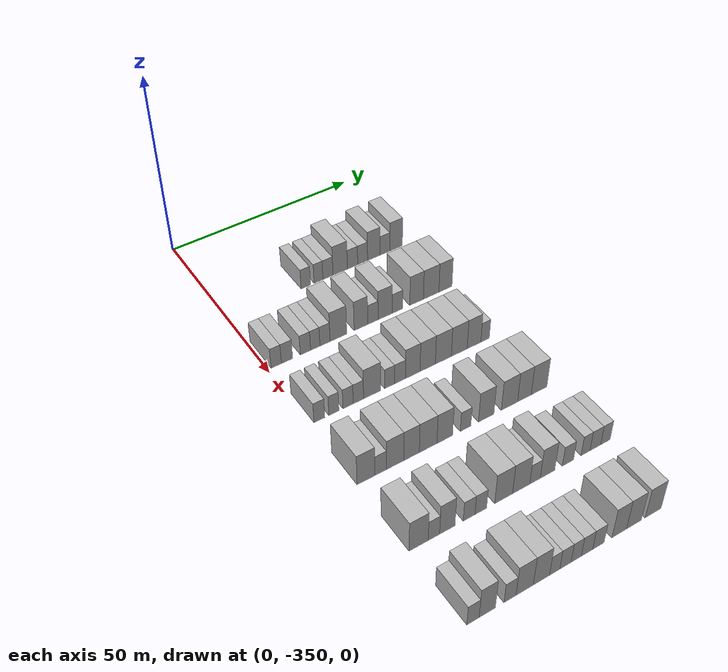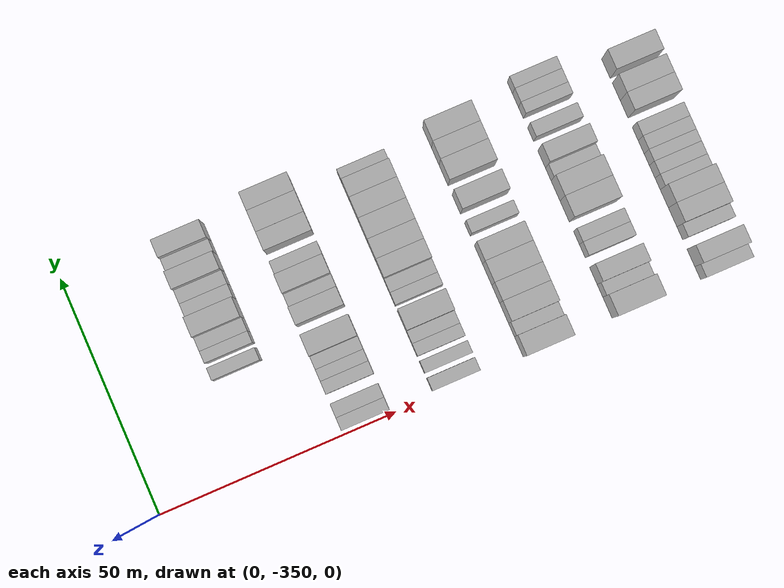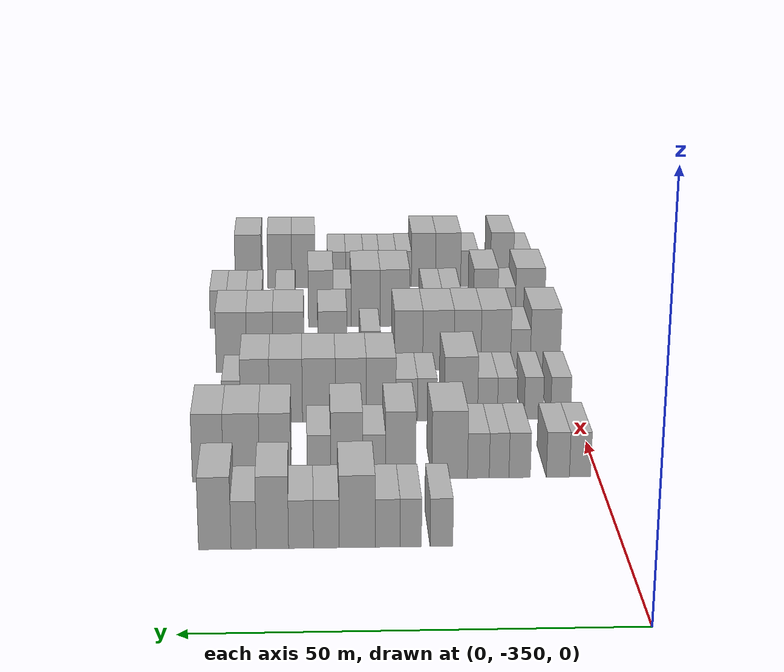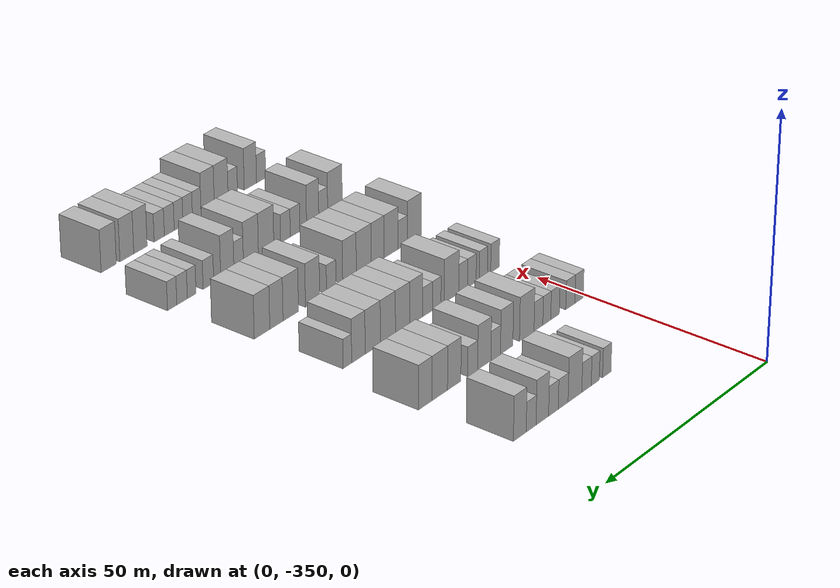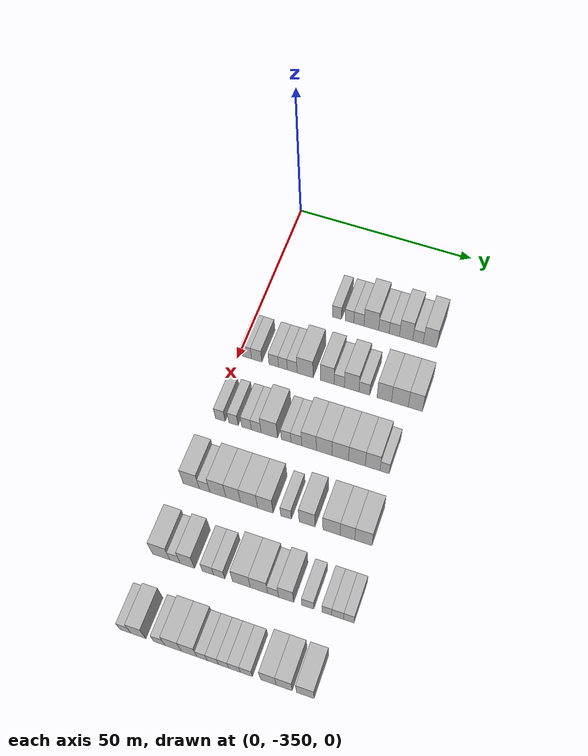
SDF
<sdf version="1.6">
 <world name="default">
  <model name="building_1">
   <static>1</static>
   <pose>25.0000 -329.0862 0 0.000000 0.000000 0.000000</pose>
   <link name="link">
    <pose>0 0 3.00 0 0 0</pose>
    <collision name="collision"><geometry><box><size>10.0000 2.6092 6.0000</size></box></geometry></collision>
    <visual name="visual">
     <cast_shadows>0</cast_shadows>
     <geometry><box><size>10.0000 2.6092 6.0000</size></box></geometry>
     <material>
      <script>
       <uri>model://HANNAS_wall/materials/scripts</uri>
       <uri>model://HANNAS_wall/materials/textures</uri>
       <name>vrc/HANNAS_wall</name>
      </script>
     </material>
    </visual>
   </link>
  </model>
  <model name="building_2">
   <static>1</static>
   <pose>25.0000 -325.5485 0 0.000000 0.000000 0.000000</pose>
   <link name="link">
    <pose>0 0 3.00 0 0 0</pose>
    <collision name="collision"><geometry><box><size>10.0000 2.4664 6.0000</size></box></geometry></collision>
    <visual name="visual">
     <cast_shadows>0</cast_shadows>
     <geometry><box><size>10.0000 2.4664 6.0000</size></box></geometry>
     <material>
      <script>
       <uri>model://HANNAS_wall/materials/scripts</uri>
       <uri>model://HANNAS_wall/materials/textures</uri>
       <name>vrc/HANNAS_wall</name>
      </script>
     </material>
    </visual>
   </link>
  </model>
  <model name="building_3">
   <static>1</static>
   <pose>25.0000 -322.8897 0 0.000000 0.000000 0.000000</pose>
   <link name="link">
    <pose>0 0 3.00 0 0 0</pose>
    <collision name="collision"><geometry><box><size>10.0000 2.8511 6.0000</size></box></geometry></collision>
    <visual name="visual">
     <cast_shadows>0</cast_shadows>
     <geometry><box><size>10.0000 2.8511 6.0000</size></box></geometry>
     <material>
      <script>
       <uri>model://HANNAS_wall/materials/scripts</uri>
       <uri>model://HANNAS_wall/materials/textures</uri>
       <name>vrc/HANNAS_wall</name>
      </script>
     </material>
    </visual>
   </link>
  </model>
  <model name="building_4">
   <static>1</static>
   <pose>25.0000 -319.3970 0 0.000000 0.000000 0.000000</pose>
   <link name="link">
    <pose>0 0 4.50 0 0 0</pose>
    <collision name="collision"><geometry><box><size>10.0000 4.1343 9.0000</size></box></geometry></collision>
    <visual name="visual">
     <cast_shadows>0</cast_shadows>
     <geometry><box><size>10.0000 4.1343 9.0000</size></box></geometry>
     <material>
      <script>
       <uri>model://HANNAS_wall/materials/scripts</uri>
       <uri>model://HANNAS_wall/materials/textures</uri>
       <name>vrc/HANNAS_wall</name>
      </script>
     </material>
    </visual>
   </link>
  </model>
  <model name="building_5">
   <static>1</static>
   <pose>25.0000 -315.8609 0 0.000000 0.000000 0.000000</pose>
   <link name="link">
    <pose>0 0 3.00 0 0 0</pose>
    <collision name="collision"><geometry><box><size>10.0000 2.9378 6.0000</size></box></geometry></collision>
    <visual name="visual">
     <cast_shadows>0</cast_shadows>
     <geometry><box><size>10.0000 2.9378 6.0000</size></box></geometry>
     <material>
      <script>
       <uri>model://HANNAS_wall/materials/scripts</uri>
       <uri>model://HANNAS_wall/materials/textures</uri>
       <name>vrc/HANNAS_wall</name>
      </script>
     </material>
    </visual>
   </link>
  </model>
  <model name="building_6">
   <static>1</static>
   <pose>25.0000 -312.9622 0 0.000000 0.000000 0.000000</pose>
   <link name="link">
    <pose>0 0 3.00 0 0 0</pose>
    <collision name="collision"><geometry><box><size>10.0000 2.8597 6.0000</size></box></geometry></collision>
    <visual name="visual">
     <cast_shadows>0</cast_shadows>
     <geometry><box><size>10.0000 2.8597 6.0000</size></box></geometry>
     <material>
      <script>
       <uri>model://HANNAS_wall/materials/scripts</uri>
       <uri>model://HANNAS_wall/materials/textures</uri>
       <name>vrc/HANNAS_wall</name>
      </script>
     </material>
    </visual>
   </link>
  </model>
  <model name="building_7">
   <static>1</static>
   <pose>25.0000 -309.6842 0 0.000000 0.000000 0.000000</pose>
   <link name="link">
    <pose>0 0 4.50 0 0 0</pose>
    <collision name="collision"><geometry><box><size>10.0000 3.6963 9.0000</size></box></geometry></collision>
    <visual name="visual">
     <cast_shadows>0</cast_shadows>
     <geometry><box><size>10.0000 3.6963 9.0000</size></box></geometry>
     <material>
      <script>
       <uri>model://HANNAS_wall/materials/scripts</uri>
       <uri>model://HANNAS_wall/materials/textures</uri>
       <name>vrc/HANNAS_wall</name>
      </script>
     </material>
    </visual>
   </link>
  </model>
  <model name="building_8">
   <static>1</static>
   <pose>25.0000 -306.3947 0 0.000000 0.000000 0.000000</pose>
   <link name="link">
    <pose>0 0 3.00 0 0 0</pose>
    <collision name="collision"><geometry><box><size>10.0000 2.8829 6.0000</size></box></geometry></collision>
    <visual name="visual">
     <cast_shadows>0</cast_shadows>
     <geometry><box><size>10.0000 2.8829 6.0000</size></box></geometry>
     <material>
      <script>
       <uri>model://HANNAS_wall/materials/scripts</uri>
       <uri>model://HANNAS_wall/materials/textures</uri>
       <name>vrc/HANNAS_wall</name>
      </script>
     </material>
    </visual>
   </link>
  </model>
  <model name="building_9">
   <static>1</static>
   <pose>25.0000 -303.0971 0 0.000000 0.000000 0.000000</pose>
   <link name="link">
    <pose>0 0 4.50 0 0 0</pose>
    <collision name="collision"><geometry><box><size>10.0000 3.7122 9.0000</size></box></geometry></collision>
    <visual name="visual">
     <cast_shadows>0</cast_shadows>
     <geometry><box><size>10.0000 3.7122 9.0000</size></box></geometry>
     <material>
      <script>
       <uri>model://HANNAS_wall/materials/scripts</uri>
       <uri>model://HANNAS_wall/materials/textures</uri>
       <name>vrc/HANNAS_wall</name>
      </script>
     </material>
    </visual>
   </link>
  </model>
  <model name="building_166">
   <static>1</static>
   <pose>44.0000 -347.6757 0 0.000000 0.000000 0.000000</pose>
   <link name="link">
    <pose>0 0 3.00 0 0 0</pose>
    <collision name="collision"><geometry><box><size>10.0000 2.6485 6.0000</size></box></geometry></collision>
    <visual name="visual">
     <cast_shadows>0</cast_shadows>
     <geometry><box><size>10.0000 2.6485 6.0000</size></box></geometry>
     <material>
      <script>
       <uri>model://HANNAS_wall/materials/scripts</uri>
       <uri>model://HANNAS_wall/materials/textures</uri>
       <name>vrc/HANNAS_wall</name>
      </script>
     </material>
    </visual>
   </link>
  </model>
  <model name="building_167">
   <static>1</static>
   <pose>44.0000 -344.9093 0 0.000000 0.000000 0.000000</pose>
   <link name="link">
    <pose>0 0 3.00 0 0 0</pose>
    <collision name="collision"><geometry><box><size>10.0000 2.8843 6.0000</size></box></geometry></collision>
    <visual name="visual">
     <cast_shadows>0</cast_shadows>
     <geometry><box><size>10.0000 2.8843 6.0000</size></box></geometry>
     <material>
      <script>
       <uri>model://HANNAS_wall/materials/scripts</uri>
       <uri>model://HANNAS_wall/materials/textures</uri>
       <name>vrc/HANNAS_wall</name>
      </script>
     </material>
    </visual>
   </link>
  </model>
  <model name="building_168">
   <static>1</static>
   <pose>44.0000 -340.1303 0 0.000000 0.000000 0.000000</pose>
   <link name="link">
    <pose>0 0 3.00 0 0 0</pose>
    <collision name="collision"><geometry><box><size>10.0000 2.6739 6.0000</size></box></geometry></collision>
    <visual name="visual">
     <cast_shadows>0</cast_shadows>
     <geometry><box><size>10.0000 2.6739 6.0000</size></box></geometry>
     <material>
      <script>
       <uri>model://HANNAS_wall/materials/scripts</uri>
       <uri>model://HANNAS_wall/materials/textures</uri>
       <name>vrc/HANNAS_wall</name>
      </script>
     </material>
    </visual>
   </link>
  </model>
  <model name="building_169">
   <static>1</static>
   <pose>44.0000 -337.5640 0 0.000000 0.000000 0.000000</pose>
   <link name="link">
    <pose>0 0 3.00 0 0 0</pose>
    <collision name="collision"><geometry><box><size>10.0000 2.4586 6.0000</size></box></geometry></collision>
    <visual name="visual">
     <cast_shadows>0</cast_shadows>
     <geometry><box><size>10.0000 2.4586 6.0000</size></box></geometry>
     <material>
      <script>
       <uri>model://HANNAS_wall/materials/scripts</uri>
       <uri>model://HANNAS_wall/materials/textures</uri>
       <name>vrc/HANNAS_wall</name>
      </script>
     </material>
    </visual>
   </link>
  </model>
  <model name="building_170">
   <static>1</static>
   <pose>44.0000 -334.9803 0 0.000000 0.000000 0.000000</pose>
   <link name="link">
    <pose>0 0 3.00 0 0 0</pose>
    <collision name="collision"><geometry><box><size>10.0000 2.7088 6.0000</size></box></geometry></collision>
    <visual name="visual">
     <cast_shadows>0</cast_shadows>
     <geometry><box><size>10.0000 2.7088 6.0000</size></box></geometry>
     <material>
      <script>
       <uri>model://HANNAS_wall/materials/scripts</uri>
       <uri>model://HANNAS_wall/materials/textures</uri>
       <name>vrc/HANNAS_wall</name>
      </script>
     </material>
    </visual>
   </link>
  </model>
  <model name="building_171">
   <static>1</static>
   <pose>44.0000 -331.4008 0 0.000000 0.000000 0.000000</pose>
   <link name="link">
    <pose>0 0 4.50 0 0 0</pose>
    <collision name="collision"><geometry><box><size>10.0000 4.4502 9.0000</size></box></geometry></collision>
    <visual name="visual">
     <cast_shadows>0</cast_shadows>
     <geometry><box><size>10.0000 4.4502 9.0000</size></box></geometry>
     <material>
      <script>
       <uri>model://HANNAS_wall/materials/scripts</uri>
       <uri>model://HANNAS_wall/materials/textures</uri>
       <name>vrc/HANNAS_wall</name>
      </script>
     </material>
    </visual>
   </link>
  </model>
  <model name="building_172">
   <static>1</static>
   <pose>44.0000 -325.3051 0 0.000000 0.000000 0.000000</pose>
   <link name="link">
    <pose>0 0 4.50 0 0 0</pose>
    <collision name="collision"><geometry><box><size>10.0000 3.7412 9.0000</size></box></geometry></collision>
    <visual name="visual">
     <cast_shadows>0</cast_shadows>
     <geometry><box><size>10.0000 3.7412 9.0000</size></box></geometry>
     <material>
      <script>
       <uri>model://HANNAS_wall/materials/scripts</uri>
       <uri>model://HANNAS_wall/materials/textures</uri>
       <name>vrc/HANNAS_wall</name>
      </script>
     </material>
    </visual>
   </link>
  </model>
  <model name="building_173">
   <static>1</static>
   <pose>44.0000 -322.0191 0 0.000000 0.000000 0.000000</pose>
   <link name="link">
    <pose>0 0 3.00 0 0 0</pose>
    <collision name="collision"><geometry><box><size>10.0000 2.8308 6.0000</size></box></geometry></collision>
    <visual name="visual">
     <cast_shadows>0</cast_shadows>
     <geometry><box><size>10.0000 2.8308 6.0000</size></box></geometry>
     <material>
      <script>
       <uri>model://HANNAS_wall/materials/scripts</uri>
       <uri>model://HANNAS_wall/materials/textures</uri>
       <name>vrc/HANNAS_wall</name>
      </script>
     </material>
    </visual>
   </link>
  </model>
  <model name="building_174">
   <static>1</static>
   <pose>44.0000 -318.6197 0 0.000000 0.000000 0.000000</pose>
   <link name="link">
    <pose>0 0 4.50 0 0 0</pose>
    <collision name="collision"><geometry><box><size>10.0000 3.9680 9.0000</size></box></geometry></collision>
    <visual name="visual">
     <cast_shadows>0</cast_shadows>
     <geometry><box><size>10.0000 3.9680 9.0000</size></box></geometry>
     <material>
      <script>
       <uri>model://HANNAS_wall/materials/scripts</uri>
       <uri>model://HANNAS_wall/materials/textures</uri>
       <name>vrc/HANNAS_wall</name>
      </script>
     </material>
    </visual>
   </link>
  </model>
  <model name="building_175">
   <static>1</static>
   <pose>44.0000 -315.1719 0 0.000000 0.000000 0.000000</pose>
   <link name="link">
    <pose>0 0 3.00 0 0 0</pose>
    <collision name="collision"><geometry><box><size>10.0000 2.9277 6.0000</size></box></geometry></collision>
    <visual name="visual">
     <cast_shadows>0</cast_shadows>
     <geometry><box><size>10.0000 2.9277 6.0000</size></box></geometry>
     <material>
      <script>
       <uri>model://HANNAS_wall/materials/scripts</uri>
       <uri>model://HANNAS_wall/materials/textures</uri>
       <name>vrc/HANNAS_wall</name>
      </script>
     </material>
    </visual>
   </link>
  </model>
  <model name="building_176">
   <static>1</static>
   <pose>44.0000 -309.7611 0 0.000000 0.000000 0.000000</pose>
   <link name="link">
    <pose>0 0 4.50 0 0 0</pose>
    <collision name="collision"><geometry><box><size>10.0000 3.8939 9.0000</size></box></geometry></collision>
    <visual name="visual">
     <cast_shadows>0</cast_shadows>
     <geometry><box><size>10.0000 3.8939 9.0000</size></box></geometry>
     <material>
      <script>
       <uri>model://HANNAS_wall/materials/scripts</uri>
       <uri>model://HANNAS_wall/materials/textures</uri>
       <name>vrc/HANNAS_wall</name>
      </script>
     </material>
    </visual>
   </link>
  </model>
  <model name="building_177">
   <static>1</static>
   <pose>44.0000 -305.5745 0 0.000000 0.000000 0.000000</pose>
   <link name="link">
    <pose>0 0 4.50 0 0 0</pose>
    <collision name="collision"><geometry><box><size>10.0000 4.4791 9.0000</size></box></geometry></collision>
    <visual name="visual">
     <cast_shadows>0</cast_shadows>
     <geometry><box><size>10.0000 4.4791 9.0000</size></box></geometry>
     <material>
      <script>
       <uri>model://HANNAS_wall/materials/scripts</uri>
       <uri>model://HANNAS_wall/materials/textures</uri>
       <name>vrc/HANNAS_wall</name>
      </script>
     </material>
    </visual>
   </link>
  </model>
  <model name="building_178">
   <static>1</static>
   <pose>44.0000 -301.4208 0 0.000000 0.000000 0.000000</pose>
   <link name="link">
    <pose>0 0 4.50 0 0 0</pose>
    <collision name="collision"><geometry><box><size>10.0000 3.8284 9.0000</size></box></geometry></collision>
    <visual name="visual">
     <cast_shadows>0</cast_shadows>
     <geometry><box><size>10.0000 3.8284 9.0000</size></box></geometry>
     <material>
      <script>
       <uri>model://HANNAS_wall/materials/scripts</uri>
       <uri>model://HANNAS_wall/materials/textures</uri>
       <name>vrc/HANNAS_wall</name>
      </script>
     </material>
    </visual>
   </link>
  </model>
  <model name="building_332">
   <static>1</static>
   <pose>63.0000 -347.6558 0 0.000000 0.000000 0.000000</pose>
   <link name="link">
    <pose>0 0 3.00 0 0 0</pose>
    <collision name="collision"><geometry><box><size>10.0000 2.6885 6.0000</size></box></geometry></collision>
    <visual name="visual">
     <cast_shadows>0</cast_shadows>
     <geometry><box><size>10.0000 2.6885 6.0000</size></box></geometry>
     <material>
      <script>
       <uri>model://HANNAS_wall/materials/scripts</uri>
       <uri>model://HANNAS_wall/materials/textures</uri>
       <name>vrc/HANNAS_wall</name>
      </script>
     </material>
    </visual>
   </link>
  </model>
  <model name="building_333">
   <static>1</static>
   <pose>63.0000 -344.0409 0 0.000000 0.000000 0.000000</pose>
   <link name="link">
    <pose>0 0 3.00 0 0 0</pose>
    <collision name="collision"><geometry><box><size>10.0000 2.5413 6.0000</size></box></geometry></collision>
    <visual name="visual">
     <cast_shadows>0</cast_shadows>
     <geometry><box><size>10.0000 2.5413 6.0000</size></box></geometry>
     <material>
      <script>
       <uri>model://HANNAS_wall/materials/scripts</uri>
       <uri>model://HANNAS_wall/materials/textures</uri>
       <name>vrc/HANNAS_wall</name>
      </script>
     </material>
    </visual>
   </link>
  </model>
  <model name="building_334">
   <static>1</static>
   <pose>63.0000 -340.4680 0 0.000000 0.000000 0.000000</pose>
   <link name="link">
    <pose>0 0 3.00 0 0 0</pose>
    <collision name="collision"><geometry><box><size>10.0000 2.6044 6.0000</size></box></geometry></collision>
    <visual name="visual">
     <cast_shadows>0</cast_shadows>
     <geometry><box><size>10.0000 2.6044 6.0000</size></box></geometry>
     <material>
      <script>
       <uri>model://HANNAS_wall/materials/scripts</uri>
       <uri>model://HANNAS_wall/materials/textures</uri>
       <name>vrc/HANNAS_wall</name>
      </script>
     </material>
    </visual>
   </link>
  </model>
  <model name="building_335">
   <static>1</static>
   <pose>63.0000 -337.8386 0 0.000000 0.000000 0.000000</pose>
   <link name="link">
    <pose>0 0 3.00 0 0 0</pose>
    <collision name="collision"><geometry><box><size>10.0000 2.6544 6.0000</size></box></geometry></collision>
    <visual name="visual">
     <cast_shadows>0</cast_shadows>
     <geometry><box><size>10.0000 2.6544 6.0000</size></box></geometry>
     <material>
      <script>
       <uri>model://HANNAS_wall/materials/scripts</uri>
       <uri>model://HANNAS_wall/materials/textures</uri>
       <name>vrc/HANNAS_wall</name>
      </script>
     </material>
    </visual>
   </link>
  </model>
  <model name="building_336">
   <static>1</static>
   <pose>63.0000 -334.2886 0 0.000000 0.000000 0.000000</pose>
   <link name="link">
    <pose>0 0 4.50 0 0 0</pose>
    <collision name="collision"><geometry><box><size>10.0000 4.4456 9.0000</size></box></geometry></collision>
    <visual name="visual">
     <cast_shadows>0</cast_shadows>
     <geometry><box><size>10.0000 4.4456 9.0000</size></box></geometry>
     <material>
      <script>
       <uri>model://HANNAS_wall/materials/scripts</uri>
       <uri>model://HANNAS_wall/materials/textures</uri>
       <name>vrc/HANNAS_wall</name>
      </script>
     </material>
    </visual>
   </link>
  </model>
  <model name="building_337">
   <static>1</static>
   <pose>63.0000 -329.7634 0 0.000000 0.000000 0.000000</pose>
   <link name="link">
    <pose>0 0 3.00 0 0 0</pose>
    <collision name="collision"><geometry><box><size>10.0000 2.6049 6.0000</size></box></geometry></collision>
    <visual name="visual">
     <cast_shadows>0</cast_shadows>
     <geometry><box><size>10.0000 2.6049 6.0000</size></box></geometry>
     <material>
      <script>
       <uri>model://HANNAS_wall/materials/scripts</uri>
       <uri>model://HANNAS_wall/materials/textures</uri>
       <name>vrc/HANNAS_wall</name>
      </script>
     </material>
    </visual>
   </link>
  </model>
  <model name="building_338">
   <static>1</static>
   <pose>63.0000 -327.0272 0 0.000000 0.000000 0.000000</pose>
   <link name="link">
    <pose>0 0 3.00 0 0 0</pose>
    <collision name="collision"><geometry><box><size>10.0000 2.8676 6.0000</size></box></geometry></collision>
    <visual name="visual">
     <cast_shadows>0</cast_shadows>
     <geometry><box><size>10.0000 2.8676 6.0000</size></box></geometry>
     <material>
      <script>
       <uri>model://HANNAS_wall/materials/scripts</uri>
       <uri>model://HANNAS_wall/materials/textures</uri>
       <name>vrc/HANNAS_wall</name>
      </script>
     </material>
    </visual>
   </link>
  </model>
  <model name="building_339">
   <static>1</static>
   <pose>63.0000 -323.6263 0 0.000000 0.000000 0.000000</pose>
   <link name="link">
    <pose>0 0 4.50 0 0 0</pose>
    <collision name="collision"><geometry><box><size>10.0000 3.9342 9.0000</size></box></geometry></collision>
    <visual name="visual">
     <cast_shadows>0</cast_shadows>
     <geometry><box><size>10.0000 3.9342 9.0000</size></box></geometry>
     <material>
      <script>
       <uri>model://HANNAS_wall/materials/scripts</uri>
       <uri>model://HANNAS_wall/materials/textures</uri>
       <name>vrc/HANNAS_wall</name>
      </script>
     </material>
    </visual>
   </link>
  </model>
  <model name="building_340">
   <static>1</static>
   <pose>63.0000 -319.5920 0 0.000000 0.000000 0.000000</pose>
   <link name="link">
    <pose>0 0 4.50 0 0 0</pose>
    <collision name="collision"><geometry><box><size>10.0000 4.1343 9.0000</size></box></geometry></collision>
    <visual name="visual">
     <cast_shadows>0</cast_shadows>
     <geometry><box><size>10.0000 4.1343 9.0000</size></box></geometry>
     <material>
      <script>
       <uri>model://HANNAS_wall/materials/scripts</uri>
       <uri>model://HANNAS_wall/materials/textures</uri>
       <name>vrc/HANNAS_wall</name>
      </script>
     </material>
    </visual>
   </link>
  </model>
  <model name="building_341">
   <static>1</static>
   <pose>63.0000 -315.3236 0 0.000000 0.000000 0.000000</pose>
   <link name="link">
    <pose>0 0 4.50 0 0 0</pose>
    <collision name="collision"><geometry><box><size>10.0000 4.4025 9.0000</size></box></geometry></collision>
    <visual name="visual">
     <cast_shadows>0</cast_shadows>
     <geometry><box><size>10.0000 4.4025 9.0000</size></box></geometry>
     <material>
      <script>
       <uri>model://HANNAS_wall/materials/scripts</uri>
       <uri>model://HANNAS_wall/materials/textures</uri>
       <name>vrc/HANNAS_wall</name>
      </script>
     </material>
    </visual>
   </link>
  </model>
  <model name="building_342">
   <static>1</static>
   <pose>63.0000 -310.9300 0 0.000000 0.000000 0.000000</pose>
   <link name="link">
    <pose>0 0 4.50 0 0 0</pose>
    <collision name="collision"><geometry><box><size>10.0000 4.3848 9.0000</size></box></geometry></collision>
    <visual name="visual">
     <cast_shadows>0</cast_shadows>
     <geometry><box><size>10.0000 4.3848 9.0000</size></box></geometry>
     <material>
      <script>
       <uri>model://HANNAS_wall/materials/scripts</uri>
       <uri>model://HANNAS_wall/materials/textures</uri>
       <name>vrc/HANNAS_wall</name>
      </script>
     </material>
    </visual>
   </link>
  </model>
  <model name="building_343">
   <static>1</static>
   <pose>63.0000 -306.8100 0 0.000000 0.000000 0.000000</pose>
   <link name="link">
    <pose>0 0 4.50 0 0 0</pose>
    <collision name="collision"><geometry><box><size>10.0000 3.8552 9.0000</size></box></geometry></collision>
    <visual name="visual">
     <cast_shadows>0</cast_shadows>
     <geometry><box><size>10.0000 3.8552 9.0000</size></box></geometry>
     <material>
      <script>
       <uri>model://HANNAS_wall/materials/scripts</uri>
       <uri>model://HANNAS_wall/materials/textures</uri>
       <name>vrc/HANNAS_wall</name>
      </script>
     </material>
    </visual>
   </link>
  </model>
  <model name="building_344">
   <static>1</static>
   <pose>63.0000 -303.6709 0 0.000000 0.000000 0.000000</pose>
   <link name="link">
    <pose>0 0 3.00 0 0 0</pose>
    <collision name="collision"><geometry><box><size>10.0000 2.4230 6.0000</size></box></geometry></collision>
    <visual name="visual">
     <cast_shadows>0</cast_shadows>
     <geometry><box><size>10.0000 2.4230 6.0000</size></box></geometry>
     <material>
      <script>
       <uri>model://HANNAS_wall/materials/scripts</uri>
       <uri>model://HANNAS_wall/materials/textures</uri>
       <name>vrc/HANNAS_wall</name>
      </script>
     </material>
    </visual>
   </link>
  </model>
  <model name="building_497">
   <static>1</static>
   <pose>82.0000 -347.8544 0 0.000000 0.000000 0.000000</pose>
   <link name="link">
    <pose>0 0 4.50 0 0 0</pose>
    <collision name="collision"><geometry><box><size>10.0000 4.2913 9.0000</size></box></geometry></collision>
    <visual name="visual">
     <cast_shadows>0</cast_shadows>
     <geometry><box><size>10.0000 4.2913 9.0000</size></box></geometry>
     <material>
      <script>
       <uri>model://HANNAS_wall/materials/scripts</uri>
       <uri>model://HANNAS_wall/materials/textures</uri>
       <name>vrc/HANNAS_wall</name>
      </script>
     </material>
    </visual>
   </link>
  </model>
  <model name="building_498">
   <static>1</static>
   <pose>82.0000 -344.2965 0 0.000000 0.000000 0.000000</pose>
   <link name="link">
    <pose>0 0 3.00 0 0 0</pose>
    <collision name="collision"><geometry><box><size>10.0000 2.8244 6.0000</size></box></geometry></collision>
    <visual name="visual">
     <cast_shadows>0</cast_shadows>
     <geometry><box><size>10.0000 2.8244 6.0000</size></box></geometry>
     <material>
      <script>
       <uri>model://HANNAS_wall/materials/scripts</uri>
       <uri>model://HANNAS_wall/materials/textures</uri>
       <name>vrc/HANNAS_wall</name>
      </script>
     </material>
    </visual>
   </link>
  </model>
  <model name="building_499">
   <static>1</static>
   <pose>82.0000 -340.7466 0 0.000000 0.000000 0.000000</pose>
   <link name="link">
    <pose>0 0 4.50 0 0 0</pose>
    <collision name="collision"><geometry><box><size>10.0000 4.2753 9.0000</size></box></geometry></collision>
    <visual name="visual">
     <cast_shadows>0</cast_shadows>
     <geometry><box><size>10.0000 4.2753 9.0000</size></box></geometry>
     <material>
      <script>
       <uri>model://HANNAS_wall/materials/scripts</uri>
       <uri>model://HANNAS_wall/materials/textures</uri>
       <name>vrc/HANNAS_wall</name>
      </script>
     </material>
    </visual>
   </link>
  </model>
  <model name="building_500">
   <static>1</static>
   <pose>82.0000 -336.6817 0 0.000000 0.000000 0.000000</pose>
   <link name="link">
    <pose>0 0 4.50 0 0 0</pose>
    <collision name="collision"><geometry><box><size>10.0000 3.8544 9.0000</size></box></geometry></collision>
    <visual name="visual">
     <cast_shadows>0</cast_shadows>
     <geometry><box><size>10.0000 3.8544 9.0000</size></box></geometry>
     <material>
      <script>
       <uri>model://HANNAS_wall/materials/scripts</uri>
       <uri>model://HANNAS_wall/materials/textures</uri>
       <name>vrc/HANNAS_wall</name>
      </script>
     </material>
    </visual>
   </link>
  </model>
  <model name="building_501">
   <static>1</static>
   <pose>82.0000 -332.5178 0 0.000000 0.000000 0.000000</pose>
   <link name="link">
    <pose>0 0 4.50 0 0 0</pose>
    <collision name="collision"><geometry><box><size>10.0000 4.4736 9.0000</size></box></geometry></collision>
    <visual name="visual">
     <cast_shadows>0</cast_shadows>
     <geometry><box><size>10.0000 4.4736 9.0000</size></box></geometry>
     <material>
      <script>
       <uri>model://HANNAS_wall/materials/scripts</uri>
       <uri>model://HANNAS_wall/materials/textures</uri>
       <name>vrc/HANNAS_wall</name>
      </script>
     </material>
    </visual>
   </link>
  </model>
  <model name="building_502">
   <static>1</static>
   <pose>82.0000 -328.2632 0 0.000000 0.000000 0.000000</pose>
   <link name="link">
    <pose>0 0 4.50 0 0 0</pose>
    <collision name="collision"><geometry><box><size>10.0000 4.0356 9.0000</size></box></geometry></collision>
    <visual name="visual">
     <cast_shadows>0</cast_shadows>
     <geometry><box><size>10.0000 4.0356 9.0000</size></box></geometry>
     <material>
      <script>
       <uri>model://HANNAS_wall/materials/scripts</uri>
       <uri>model://HANNAS_wall/materials/textures</uri>
       <name>vrc/HANNAS_wall</name>
      </script>
     </material>
    </visual>
   </link>
  </model>
  <model name="building_503">
   <static>1</static>
   <pose>82.0000 -322.8626 0 0.000000 0.000000 0.000000</pose>
   <link name="link">
    <pose>0 0 3.00 0 0 0</pose>
    <collision name="collision"><geometry><box><size>10.0000 2.7655 6.0000</size></box></geometry></collision>
    <visual name="visual">
     <cast_shadows>0</cast_shadows>
     <geometry><box><size>10.0000 2.7655 6.0000</size></box></geometry>
     <material>
      <script>
       <uri>model://HANNAS_wall/materials/scripts</uri>
       <uri>model://HANNAS_wall/materials/textures</uri>
       <name>vrc/HANNAS_wall</name>
      </script>
     </material>
    </visual>
   </link>
  </model>
  <model name="building_504">
   <static>1</static>
   <pose>82.0000 -317.4245 0 0.000000 0.000000 0.000000</pose>
   <link name="link">
    <pose>0 0 4.50 0 0 0</pose>
    <collision name="collision"><geometry><box><size>10.0000 4.1108 9.0000</size></box></geometry></collision>
    <visual name="visual">
     <cast_shadows>0</cast_shadows>
     <geometry><box><size>10.0000 4.1108 9.0000</size></box></geometry>
     <material>
      <script>
       <uri>model://HANNAS_wall/materials/scripts</uri>
       <uri>model://HANNAS_wall/materials/textures</uri>
       <name>vrc/HANNAS_wall</name>
      </script>
     </material>
    </visual>
   </link>
  </model>
  <model name="building_505">
   <static>1</static>
   <pose>82.0000 -311.1637 0 0.000000 0.000000 0.000000</pose>
   <link name="link">
    <pose>0 0 4.50 0 0 0</pose>
    <collision name="collision"><geometry><box><size>10.0000 4.4108 9.0000</size></box></geometry></collision>
    <visual name="visual">
     <cast_shadows>0</cast_shadows>
     <geometry><box><size>10.0000 4.4108 9.0000</size></box></geometry>
     <material>
      <script>
       <uri>model://HANNAS_wall/materials/scripts</uri>
       <uri>model://HANNAS_wall/materials/textures</uri>
       <name>vrc/HANNAS_wall</name>
      </script>
     </material>
    </visual>
   </link>
  </model>
  <model name="building_506">
   <static>1</static>
   <pose>82.0000 -307.0780 0 0.000000 0.000000 0.000000</pose>
   <link name="link">
    <pose>0 0 4.50 0 0 0</pose>
    <collision name="collision"><geometry><box><size>10.0000 3.7606 9.0000</size></box></geometry></collision>
    <visual name="visual">
     <cast_shadows>0</cast_shadows>
     <geometry><box><size>10.0000 3.7606 9.0000</size></box></geometry>
     <material>
      <script>
       <uri>model://HANNAS_wall/materials/scripts</uri>
       <uri>model://HANNAS_wall/materials/textures</uri>
       <name>vrc/HANNAS_wall</name>
      </script>
     </material>
    </visual>
   </link>
  </model>
  <model name="building_507">
   <static>1</static>
   <pose>82.0000 -303.0196 0 0.000000 0.000000 0.000000</pose>
   <link name="link">
    <pose>0 0 4.50 0 0 0</pose>
    <collision name="collision"><geometry><box><size>10.0000 4.3563 9.0000</size></box></geometry></collision>
    <visual name="visual">
     <cast_shadows>0</cast_shadows>
     <geometry><box><size>10.0000 4.3563 9.0000</size></box></geometry>
     <material>
      <script>
       <uri>model://HANNAS_wall/materials/scripts</uri>
       <uri>model://HANNAS_wall/materials/textures</uri>
       <name>vrc/HANNAS_wall</name>
      </script>
     </material>
    </visual>
   </link>
  </model>
  <model name="building_673">
   <static>1</static>
   <pose>101.0000 -347.7579 0 0.000000 0.000000 0.000000</pose>
   <link name="link">
    <pose>0 0 4.50 0 0 0</pose>
    <collision name="collision"><geometry><box><size>10.0000 4.4843 9.0000</size></box></geometry></collision>
    <visual name="visual">
     <cast_shadows>0</cast_shadows>
     <geometry><box><size>10.0000 4.4843 9.0000</size></box></geometry>
     <material>
      <script>
       <uri>model://HANNAS_wall/materials/scripts</uri>
       <uri>model://HANNAS_wall/materials/textures</uri>
       <name>vrc/HANNAS_wall</name>
      </script>
     </material>
    </visual>
   </link>
  </model>
  <model name="building_674">
   <static>1</static>
   <pose>101.0000 -344.1695 0 0.000000 0.000000 0.000000</pose>
   <link name="link">
    <pose>0 0 3.00 0 0 0</pose>
    <collision name="collision"><geometry><box><size>10.0000 2.6924 6.0000</size></box></geometry></collision>
    <visual name="visual">
     <cast_shadows>0</cast_shadows>
     <geometry><box><size>10.0000 2.6924 6.0000</size></box></geometry>
     <material>
      <script>
       <uri>model://HANNAS_wall/materials/scripts</uri>
       <uri>model://HANNAS_wall/materials/textures</uri>
       <name>vrc/HANNAS_wall</name>
      </script>
     </material>
    </visual>
   </link>
  </model>
  <model name="building_675">
   <static>1</static>
   <pose>101.0000 -340.9792 0 0.000000 0.000000 0.000000</pose>
   <link name="link">
    <pose>0 0 4.50 0 0 0</pose>
    <collision name="collision"><geometry><box><size>10.0000 3.6883 9.0000</size></box></geometry></collision>
    <visual name="visual">
     <cast_shadows>0</cast_shadows>
     <geometry><box><size>10.0000 3.6883 9.0000</size></box></geometry>
     <material>
      <script>
       <uri>model://HANNAS_wall/materials/scripts</uri>
       <uri>model://HANNAS_wall/materials/textures</uri>
       <name>vrc/HANNAS_wall</name>
      </script>
     </material>
    </visual>
   </link>
  </model>
  <model name="building_676">
   <static>1</static>
   <pose>101.0000 -335.7025 0 0.000000 0.000000 0.000000</pose>
   <link name="link">
    <pose>0 0 3.00 0 0 0</pose>
    <collision name="collision"><geometry><box><size>10.0000 2.8651 6.0000</size></box></geometry></collision>
    <visual name="visual">
     <cast_shadows>0</cast_shadows>
     <geometry><box><size>10.0000 2.8651 6.0000</size></box></geometry>
     <material>
      <script>
       <uri>model://HANNAS_wall/materials/scripts</uri>
       <uri>model://HANNAS_wall/materials/textures</uri>
       <name>vrc/HANNAS_wall</name>
      </script>
     </material>
    </visual>
   </link>
  </model>
  <model name="building_677">
   <static>1</static>
   <pose>101.0000 -332.8366 0 0.000000 0.000000 0.000000</pose>
   <link name="link">
    <pose>0 0 3.00 0 0 0</pose>
    <collision name="collision"><geometry><box><size>10.0000 2.8666 6.0000</size></box></geometry></collision>
    <visual name="visual">
     <cast_shadows>0</cast_shadows>
     <geometry><box><size>10.0000 2.8666 6.0000</size></box></geometry>
     <material>
      <script>
       <uri>model://HANNAS_wall/materials/scripts</uri>
       <uri>model://HANNAS_wall/materials/textures</uri>
       <name>vrc/HANNAS_wall</name>
      </script>
     </material>
    </visual>
   </link>
  </model>
  <model name="building_678">
   <static>1</static>
   <pose>101.0000 -327.1557 0 0.000000 0.000000 0.000000</pose>
   <link name="link">
    <pose>0 0 4.50 0 0 0</pose>
    <collision name="collision"><geometry><box><size>10.0000 4.4953 9.0000</size></box></geometry></collision>
    <visual name="visual">
     <cast_shadows>0</cast_shadows>
     <geometry><box><size>10.0000 4.4953 9.0000</size></box></geometry>
     <material>
      <script>
       <uri>model://HANNAS_wall/materials/scripts</uri>
       <uri>model://HANNAS_wall/materials/textures</uri>
       <name>vrc/HANNAS_wall</name>
      </script>
     </material>
    </visual>
   </link>
  </model>
  <model name="building_679">
   <static>1</static>
   <pose>101.0000 -322.7240 0 0.000000 0.000000 0.000000</pose>
   <link name="link">
    <pose>0 0 4.50 0 0 0</pose>
    <collision name="collision"><geometry><box><size>10.0000 4.3681 9.0000</size></box></geometry></collision>
    <visual name="visual">
     <cast_shadows>0</cast_shadows>
     <geometry><box><size>10.0000 4.3681 9.0000</size></box></geometry>
     <material>
      <script>
       <uri>model://HANNAS_wall/materials/scripts</uri>
       <uri>model://HANNAS_wall/materials/textures</uri>
       <name>vrc/HANNAS_wall</name>
      </script>
     </material>
    </visual>
   </link>
  </model>
  <model name="building_680">
   <static>1</static>
   <pose>101.0000 -319.1742 0 0.000000 0.000000 0.000000</pose>
   <link name="link">
    <pose>0 0 3.00 0 0 0</pose>
    <collision name="collision"><geometry><box><size>10.0000 2.7315 6.0000</size></box></geometry></collision>
    <visual name="visual">
     <cast_shadows>0</cast_shadows>
     <geometry><box><size>10.0000 2.7315 6.0000</size></box></geometry>
     <material>
      <script>
       <uri>model://HANNAS_wall/materials/scripts</uri>
       <uri>model://HANNAS_wall/materials/textures</uri>
       <name>vrc/HANNAS_wall</name>
      </script>
     </material>
    </visual>
   </link>
  </model>
  <model name="building_681">
   <static>1</static>
   <pose>101.0000 -315.9176 0 0.000000 0.000000 0.000000</pose>
   <link name="link">
    <pose>0 0 4.50 0 0 0</pose>
    <collision name="collision"><geometry><box><size>10.0000 3.7818 9.0000</size></box></geometry></collision>
    <visual name="visual">
     <cast_shadows>0</cast_shadows>
     <geometry><box><size>10.0000 3.7818 9.0000</size></box></geometry>
     <material>
      <script>
       <uri>model://HANNAS_wall/materials/scripts</uri>
       <uri>model://HANNAS_wall/materials/textures</uri>
       <name>vrc/HANNAS_wall</name>
      </script>
     </material>
    </visual>
   </link>
  </model>
  <model name="building_682">
   <static>1</static>
   <pose>101.0000 -310.5307 0 0.000000 0.000000 0.000000</pose>
   <link name="link">
    <pose>0 0 3.00 0 0 0</pose>
    <collision name="collision"><geometry><box><size>10.0000 2.9920 6.0000</size></box></geometry></collision>
    <visual name="visual">
     <cast_shadows>0</cast_shadows>
     <geometry><box><size>10.0000 2.9920 6.0000</size></box></geometry>
     <material>
      <script>
       <uri>model://HANNAS_wall/materials/scripts</uri>
       <uri>model://HANNAS_wall/materials/textures</uri>
       <name>vrc/HANNAS_wall</name>
      </script>
     </material>
    </visual>
   </link>
  </model>
  <model name="building_683">
   <static>1</static>
   <pose>101.0000 -305.8248 0 0.000000 0.000000 0.000000</pose>
   <link name="link">
    <pose>0 0 3.00 0 0 0</pose>
    <collision name="collision"><geometry><box><size>10.0000 2.4198 6.0000</size></box></geometry></collision>
    <visual name="visual">
     <cast_shadows>0</cast_shadows>
     <geometry><box><size>10.0000 2.4198 6.0000</size></box></geometry>
     <material>
      <script>
       <uri>model://HANNAS_wall/materials/scripts</uri>
       <uri>model://HANNAS_wall/materials/textures</uri>
       <name>vrc/HANNAS_wall</name>
      </script>
     </material>
    </visual>
   </link>
  </model>
  <model name="building_684">
   <static>1</static>
   <pose>101.0000 -303.1534 0 0.000000 0.000000 0.000000</pose>
   <link name="link">
    <pose>0 0 3.00 0 0 0</pose>
    <collision name="collision"><geometry><box><size>10.0000 2.9230 6.0000</size></box></geometry></collision>
    <visual name="visual">
     <cast_shadows>0</cast_shadows>
     <geometry><box><size>10.0000 2.9230 6.0000</size></box></geometry>
     <material>
      <script>
       <uri>model://HANNAS_wall/materials/scripts</uri>
       <uri>model://HANNAS_wall/materials/textures</uri>
       <name>vrc/HANNAS_wall</name>
      </script>
     </material>
    </visual>
   </link>
  </model>
  <model name="building_685">
   <static>1</static>
   <pose>101.0000 -300.4019 0 0.000000 0.000000 0.000000</pose>
   <link name="link">
    <pose>0 0 3.00 0 0 0</pose>
    <collision name="collision"><geometry><box><size>10.0000 2.5800 6.0000</size></box></geometry></collision>
    <visual name="visual">
     <cast_shadows>0</cast_shadows>
     <geometry><box><size>10.0000 2.5800 6.0000</size></box></geometry>
     <material>
      <script>
       <uri>model://HANNAS_wall/materials/scripts</uri>
       <uri>model://HANNAS_wall/materials/textures</uri>
       <name>vrc/HANNAS_wall</name>
      </script>
     </material>
    </visual>
   </link>
  </model>
  <model name="building_845">
   <static>1</static>
   <pose>120.0000 -348.6038 0 0.000000 0.000000 0.000000</pose>
   <link name="link">
    <pose>0 0 3.00 0 0 0</pose>
    <collision name="collision"><geometry><box><size>10.0000 2.7925 6.0000</size></box></geometry></collision>
    <visual name="visual">
     <cast_shadows>0</cast_shadows>
     <geometry><box><size>10.0000 2.7925 6.0000</size></box></geometry>
     <material>
      <script>
       <uri>model://HANNAS_wall/materials/scripts</uri>
       <uri>model://HANNAS_wall/materials/textures</uri>
       <name>vrc/HANNAS_wall</name>
      </script>
     </material>
    </visual>
   </link>
  </model>
  <model name="building_846">
   <static>1</static>
   <pose>120.0000 -345.3459 0 0.000000 0.000000 0.000000</pose>
   <link name="link">
    <pose>0 0 4.50 0 0 0</pose>
    <collision name="collision"><geometry><box><size>10.0000 3.7231 9.0000</size></box></geometry></collision>
    <visual name="visual">
     <cast_shadows>0</cast_shadows>
     <geometry><box><size>10.0000 3.7231 9.0000</size></box></geometry>
     <material>
      <script>
       <uri>model://HANNAS_wall/materials/scripts</uri>
       <uri>model://HANNAS_wall/materials/textures</uri>
       <name>vrc/HANNAS_wall</name>
      </script>
     </material>
    </visual>
   </link>
  </model>
  <model name="building_847">
   <static>1</static>
   <pose>120.0000 -340.0835 0 0.000000 0.000000 0.000000</pose>
   <link name="link">
    <pose>0 0 3.00 0 0 0</pose>
    <collision name="collision"><geometry><box><size>10.0000 2.8018 6.0000</size></box></geometry></collision>
    <visual name="visual">
     <cast_shadows>0</cast_shadows>
     <geometry><box><size>10.0000 2.8018 6.0000</size></box></geometry>
     <material>
      <script>
       <uri>model://HANNAS_wall/materials/scripts</uri>
       <uri>model://HANNAS_wall/materials/textures</uri>
       <name>vrc/HANNAS_wall</name>
      </script>
     </material>
    </visual>
   </link>
  </model>
  <model name="building_848">
   <static>1</static>
   <pose>120.0000 -336.6377 0 0.000000 0.000000 0.000000</pose>
   <link name="link">
    <pose>0 0 4.50 0 0 0</pose>
    <collision name="collision"><geometry><box><size>10.0000 4.0897 9.0000</size></box></geometry></collision>
    <visual name="visual">
     <cast_shadows>0</cast_shadows>
     <geometry><box><size>10.0000 4.0897 9.0000</size></box></geometry>
     <material>
      <script>
       <uri>model://HANNAS_wall/materials/scripts</uri>
       <uri>model://HANNAS_wall/materials/textures</uri>
       <name>vrc/HANNAS_wall</name>
      </script>
     </material>
    </visual>
   </link>
  </model>
  <model name="building_849">
   <static>1</static>
   <pose>120.0000 -332.6390 0 0.000000 0.000000 0.000000</pose>
   <link name="link">
    <pose>0 0 4.50 0 0 0</pose>
    <collision name="collision"><geometry><box><size>10.0000 3.9078 9.0000</size></box></geometry></collision>
    <visual name="visual">
     <cast_shadows>0</cast_shadows>
     <geometry><box><size>10.0000 3.9078 9.0000</size></box></geometry>
     <material>
      <script>
       <uri>model://HANNAS_wall/materials/scripts</uri>
       <uri>model://HANNAS_wall/materials/textures</uri>
       <name>vrc/HANNAS_wall</name>
      </script>
     </material>
    </visual>
   </link>
  </model>
  <model name="building_850">
   <static>1</static>
   <pose>120.0000 -329.4349 0 0.000000 0.000000 0.000000</pose>
   <link name="link">
    <pose>0 0 3.00 0 0 0</pose>
    <collision name="collision"><geometry><box><size>10.0000 2.5003 6.0000</size></box></geometry></collision>
    <visual name="visual">
     <cast_shadows>0</cast_shadows>
     <geometry><box><size>10.0000 2.5003 6.0000</size></box></geometry>
     <material>
      <script>
       <uri>model://HANNAS_wall/materials/scripts</uri>
       <uri>model://HANNAS_wall/materials/textures</uri>
       <name>vrc/HANNAS_wall</name>
      </script>
     </material>
    </visual>
   </link>
  </model>
  <model name="building_851">
   <static>1</static>
   <pose>120.0000 -326.8120 0 0.000000 0.000000 0.000000</pose>
   <link name="link">
    <pose>0 0 3.00 0 0 0</pose>
    <collision name="collision"><geometry><box><size>10.0000 2.7456 6.0000</size></box></geometry></collision>
    <visual name="visual">
     <cast_shadows>0</cast_shadows>
     <geometry><box><size>10.0000 2.7456 6.0000</size></box></geometry>
     <material>
      <script>
       <uri>model://HANNAS_wall/materials/scripts</uri>
       <uri>model://HANNAS_wall/materials/textures</uri>
       <name>vrc/HANNAS_wall</name>
      </script>
     </material>
    </visual>
   </link>
  </model>
  <model name="building_852">
   <static>1</static>
   <pose>120.0000 -324.1729 0 0.000000 0.000000 0.000000</pose>
   <link name="link">
    <pose>0 0 3.00 0 0 0</pose>
    <collision name="collision"><geometry><box><size>10.0000 2.5327 6.0000</size></box></geometry></collision>
    <visual name="visual">
     <cast_shadows>0</cast_shadows>
     <geometry><box><size>10.0000 2.5327 6.0000</size></box></geometry>
     <material>
      <script>
       <uri>model://HANNAS_wall/materials/scripts</uri>
       <uri>model://HANNAS_wall/materials/textures</uri>
       <name>vrc/HANNAS_wall</name>
      </script>
     </material>
    </visual>
   </link>
  </model>
  <model name="building_853">
   <static>1</static>
   <pose>120.0000 -321.4798 0 0.000000 0.000000 0.000000</pose>
   <link name="link">
    <pose>0 0 3.00 0 0 0</pose>
    <collision name="collision"><geometry><box><size>10.0000 2.8535 6.0000</size></box></geometry></collision>
    <visual name="visual">
     <cast_shadows>0</cast_shadows>
     <geometry><box><size>10.0000 2.8535 6.0000</size></box></geometry>
     <material>
      <script>
       <uri>model://HANNAS_wall/materials/scripts</uri>
       <uri>model://HANNAS_wall/materials/textures</uri>
       <name>vrc/HANNAS_wall</name>
      </script>
     </material>
    </visual>
   </link>
  </model>
  <model name="building_854">
   <static>1</static>
   <pose>120.0000 -318.6045 0 0.000000 0.000000 0.000000</pose>
   <link name="link">
    <pose>0 0 3.00 0 0 0</pose>
    <collision name="collision"><geometry><box><size>10.0000 2.8971 6.0000</size></box></geometry></collision>
    <visual name="visual">
     <cast_shadows>0</cast_shadows>
     <geometry><box><size>10.0000 2.8971 6.0000</size></box></geometry>
     <material>
      <script>
       <uri>model://HANNAS_wall/materials/scripts</uri>
       <uri>model://HANNAS_wall/materials/textures</uri>
       <name>vrc/HANNAS_wall</name>
      </script>
     </material>
    </visual>
   </link>
  </model>
  <model name="building_855">
   <static>1</static>
   <pose>120.0000 -313.2696 0 0.000000 0.000000 0.000000</pose>
   <link name="link">
    <pose>0 0 4.50 0 0 0</pose>
    <collision name="collision"><geometry><box><size>10.0000 3.7725 9.0000</size></box></geometry></collision>
    <visual name="visual">
     <cast_shadows>0</cast_shadows>
     <geometry><box><size>10.0000 3.7725 9.0000</size></box></geometry>
     <material>
      <script>
       <uri>model://HANNAS_wall/materials/scripts</uri>
       <uri>model://HANNAS_wall/materials/textures</uri>
       <name>vrc/HANNAS_wall</name>
      </script>
     </material>
    </visual>
   </link>
  </model>
  <model name="building_856">
   <static>1</static>
   <pose>120.0000 -309.4510 0 0.000000 0.000000 0.000000</pose>
   <link name="link">
    <pose>0 0 4.50 0 0 0</pose>
    <collision name="collision"><geometry><box><size>10.0000 3.8646 9.0000</size></box></geometry></collision>
    <visual name="visual">
     <cast_shadows>0</cast_shadows>
     <geometry><box><size>10.0000 3.8646 9.0000</size></box></geometry>
     <material>
      <script>
       <uri>model://HANNAS_wall/materials/scripts</uri>
       <uri>model://HANNAS_wall/materials/textures</uri>
       <name>vrc/HANNAS_wall</name>
      </script>
     </material>
    </visual>
   </link>
  </model>
  <model name="building_857">
   <static>1</static>
   <pose>120.0000 -304.4035 0 0.000000 0.000000 0.000000</pose>
   <link name="link">
    <pose>0 0 4.50 0 0 0</pose>
    <collision name="collision"><geometry><box><size>10.0000 4.2304 9.0000</size></box></geometry></collision>
    <visual name="visual">
     <cast_shadows>0</cast_shadows>
     <geometry><box><size>10.0000 4.2304 9.0000</size></box></geometry>
     <material>
      <script>
       <uri>model://HANNAS_wall/materials/scripts</uri>
       <uri>model://HANNAS_wall/materials/textures</uri>
       <name>vrc/HANNAS_wall</name>
      </script>
     </material>
    </visual>
   </link>
  </model>
 </world>
</sdf>
